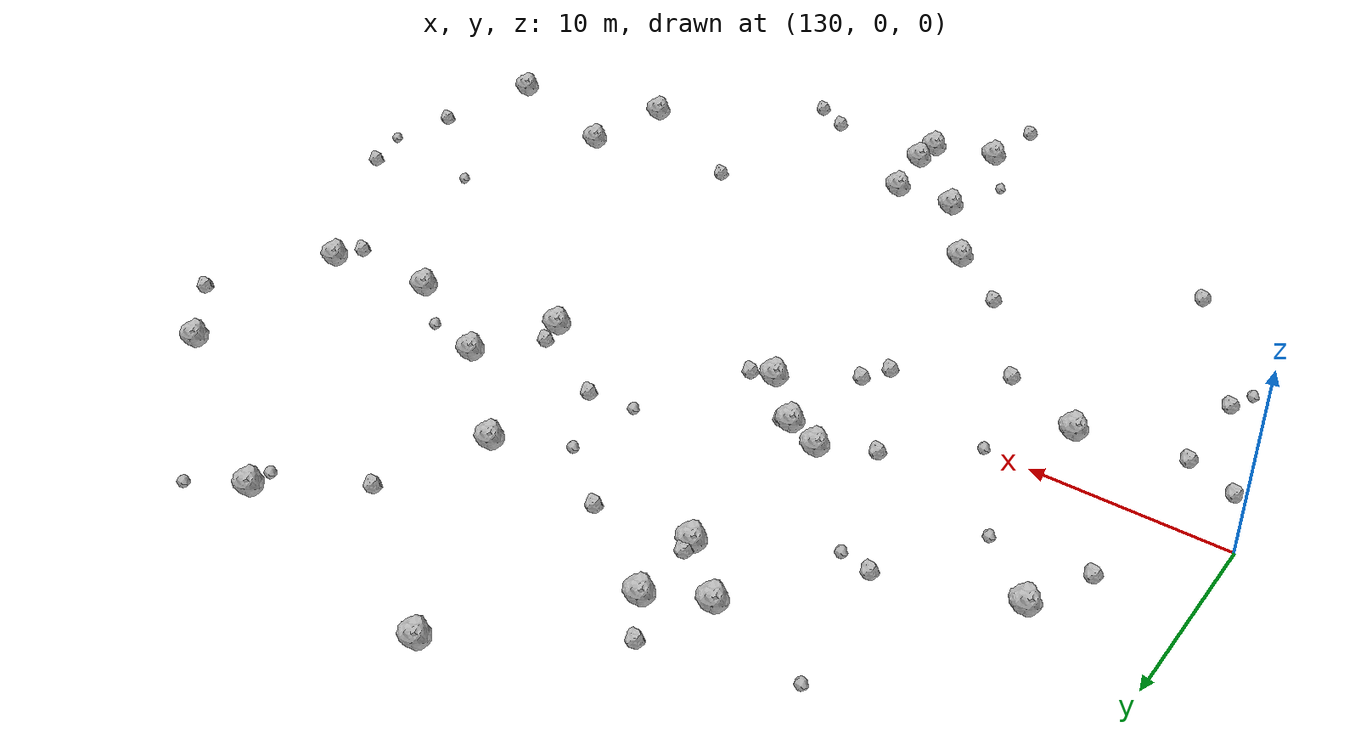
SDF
<sdf version="1.6">
 <world name="default">
  <include><uri>model://sun</uri></include>
  <model name="rock1_4_2">
   <include><uri>model://rock1</uri><pose>158.6550012631584 -22.2031380628884 0.5 0 0 0</pose></include>
  </model>
  <model name="rock1_4_3">
   <include><uri>model://rock1</uri><pose>173.3884005571448 5.204731684961274 0.5 0 0 0</pose></include>
  </model>
  <model name="rock1_4_4">
   <include><uri>model://rock1</uri><pose>150.9680054812359 3.686070891277218 0.5 0 0 0</pose></include>
  </model>
  <model name="rock1_4_5">
   <include><uri>model://rock1</uri><pose>136.01094713105903 8.377948889508957 0.5 0 0 0</pose></include>
  </model>
  <model name="rock1_4_6">
   <include><uri>model://rock1</uri><pose>155.12261176317534 -25.036456938575398 0.5 0 0 0</pose></include>
  </model>
  <model name="rock1_4_7">
   <include><uri>model://rock1</uri><pose>168.64064733642255 22.067451605080265 0.5 0 0 0</pose></include>
  </model>
  <model name="rock1_4_8">
   <include><uri>model://rock1</uri><pose>161.87478738523365 13.073514545352381 0.5 0 0 0</pose></include>
  </model>
  <model name="rock1_4_9">
   <include><uri>model://rock1</uri><pose>146.89282343516626 15.921397377291704 0.5 0 0 0</pose></include>
  </model>
  <model name="rock1_4_10">
   <include><uri>model://rock1</uri><pose>149.84639573108683 13.353756489468232 0.5 0 0 0</pose></include>
  </model>
  <model name="rock1_4_11">
   <include><uri>model://rock1</uri><pose>151.36430572928924 -13.974076011532215 0.5 0 0 0</pose></include>
  </model>
  <model name="rock1_4_12">
   <include><uri>model://rock1</uri><pose>157.96194273167603 -18.517885646405766 0.5 0 0 0</pose></include>
  </model>
  <model name="rock1_4_13">
   <include><uri>model://rock1</uri><pose>167.40805707027272 8.206272618997694 0.5 0 0 0</pose></include>
  </model>
  <model name="rock1_4_14">
   <include><uri>model://rock1</uri><pose>175.9444007005435 -12.776272116919081 0.5 0 0 0</pose></include>
  </model>
  <model name="rock1_4_15">
   <include><uri>model://rock1</uri><pose>154.44785664794952 -18.49552232557981 0.5 0 0 0</pose></include>
  </model>
  <model name="rock1_4_16">
   <include><uri>model://rock1</uri><pose>153.6245475364784 1.0583879797606883 0.5 0 0 0</pose></include>
  </model>
  <model name="rock1_4_17">
   <include><uri>model://rock1</uri><pose>165.29491256864608 3.8737519667300333 0.5 0 0 0</pose></include>
  </model>
  <model name="rock1_4_18">
   <include><uri>model://rock1</uri><pose>179.39332287069084 5.88210864074253 0.5 0 0 0</pose></include>
  </model>
  <model name="rock1_4_19">
   <include><uri>model://rock1</uri><pose>149.00294308046665 4.554871492030081 0.5 0 0 0</pose></include>
  </model>
  <model name="rock1_4_20">
   <include><uri>model://rock1</uri><pose>155.70747124528143 24.811401314754775 0.5 0 0 0</pose></include>
  </model>
  <model name="rock1_4_21">
   <include><uri>model://rock1</uri><pose>183.7455686944809 -15.622626113186541 0.5 0 0 0</pose></include>
  </model>
  <model name="rock1_4_22">
   <include><uri>model://rock1</uri><pose>149.68270767620845 17.375319937507058 0.5 0 0 0</pose></include>
  </model>
  <model name="rock1_4_23">
   <include><uri>model://rock1</uri><pose>179.7398213982105 15.538054796876317 0.5 0 0 0</pose></include>
  </model>
  <model name="rock1_4_24">
   <include><uri>model://rock1</uri><pose>158.59573517016605 -23.958571477610487 0.5 0 0 0</pose></include>
  </model>
  <model name="rock1_4_25">
   <include><uri>model://rock1</uri><pose>174.93570689900434 -17.910401313295427 0.5 0 0 0</pose></include>
  </model>
  <model name="rock1_4_26">
   <include><uri>model://rock1</uri><pose>139.56417773912491 -3.6200156017915397 0.5 0 0 0</pose></include>
  </model>
  <model name="rock2_4_0">
   <include><uri>model://rock2</uri><pose>164.66923261570895 -23.06890113905434 0.3 0 0 0</pose></include>
  </model>
  <model name="rock2_4_1">
   <include><uri>model://rock2</uri><pose>151.37704728467804 3.776587715280968 0.3 0 0 0</pose></include>
  </model>
  <model name="rock2_4_2">
   <include><uri>model://rock2</uri><pose>164.85723548409885 5.270170432731057 0.3 0 0 0</pose></include>
  </model>
  <model name="rock2_4_3">
   <include><uri>model://rock2</uri><pose>149.98478172543054 -1.3564913827487537 0.3 0 0 0</pose></include>
  </model>
  <model name="rock2_4_4">
   <include><uri>model://rock2</uri><pose>143.9143993008623 -5.715794958489141 0.3 0 0 0</pose></include>
  </model>
  <model name="rock2_4_5">
   <include><uri>model://rock2</uri><pose>131.4544935587424 -3.549836740279993 0.3 0 0 0</pose></include>
  </model>
  <model name="rock2_4_6">
   <include><uri>model://rock2</uri><pose>163.95111803575432 18.784169793181967 0.3 0 0 0</pose></include>
  </model>
  <model name="rock2_4_7">
   <include><uri>model://rock2</uri><pose>185.06066080901292 -9.580091142397855 0.3 0 0 0</pose></include>
  </model>
  <model name="rock2_4_8">
   <include><uri>model://rock2</uri><pose>154.78223507634556 1.4191512680226168 0.3 0 0 0</pose></include>
  </model>
  <model name="rock2_4_9">
   <include><uri>model://rock2</uri><pose>160.2730878568544 7.479662082123248 0.3 0 0 0</pose></include>
  </model>
  <model name="rock2_4_10">
   <include><uri>model://rock2</uri><pose>134.41462060548142 5.080957476373648 0.3 0 0 0</pose></include>
  </model>
  <model name="rock2_4_11">
   <include><uri>model://rock2</uri><pose>178.5974757969309 4.4832939791375 0.3 0 0 0</pose></include>
  </model>
  <model name="rock2_4_12">
   <include><uri>model://rock2</uri><pose>166.62470221775712 -24.16418374147863 0.3 0 0 0</pose></include>
  </model>
  <model name="rock2_4_13">
   <include><uri>model://rock2</uri><pose>138.86527458199612 -17.78320124216649 0.3 0 0 0</pose></include>
  </model>
  <model name="rock2_4_14">
   <include><uri>model://rock2</uri><pose>134.1444743429582 -4.677356692839002 0.3 0 0 0</pose></include>
  </model>
  <model name="rock2_4_15">
   <include><uri>model://rock2</uri><pose>149.15085211053557 -2.7541636487303904 0.3 0 0 0</pose></include>
  </model>
  <model name="rock2_4_16">
   <include><uri>model://rock2</uri><pose>147.8387414971969 -11.240613477512372 0.3 0 0 0</pose></include>
  </model>
  <model name="rock2_4_17">
   <include><uri>model://rock2</uri><pose>185.04384160019453 -3.252712887755294 0.3 0 0 0</pose></include>
  </model>
  <model name="rock2_4_18">
   <include><uri>model://rock2</uri><pose>149.74342431170356 14.046693272420079 0.3 0 0 0</pose></include>
  </model>
  <model name="rock2_4_19">
   <include><uri>model://rock2</uri><pose>154.55380363839546 -28.760490978310592 0.3 0 0 0</pose></include>
  </model>
  <model name="rock2_4_20">
   <include><uri>model://rock2</uri><pose>167.25814806901607 -13.844917534552362 0.3 0 0 0</pose></include>
  </model>
  <model name="rock2_4_21">
   <include><uri>model://rock2</uri><pose>182.9029033016297 12.00649366052005 0.3 0 0 0</pose></include>
  </model>
  <model name="rock2_4_22">
   <include><uri>model://rock2</uri><pose>134.12958248347397 -9.746159274968832 0.3 0 0 0</pose></include>
  </model>
  <model name="rock2_4_23">
   <include><uri>model://rock2</uri><pose>142.38888297608503 10.488113500420745 0.3 0 0 0</pose></include>
  </model>
  <model name="rock2_4_24">
   <include><uri>model://rock2</uri><pose>146.31661576681643 3.2351544432951584 0.3 0 0 0</pose></include>
  </model>
  <model name="rock2_4_25">
   <include><uri>model://rock2</uri><pose>148.16231129136133 19.649639453260704 0.3 0 0 0</pose></include>
  </model>
  <model name="rock2_4_26">
   <include><uri>model://rock2</uri><pose>154.83053888108142 13.954280764055163 0.3 0 0 0</pose></include>
  </model>
  <model name="rock3_4_0">
   <include><uri>model://rock3</uri><pose>152.96932481092585 -21.957636756479804 0.2 0 0 0</pose></include>
  </model>
  <model name="rock3_4_1">
   <include><uri>model://rock3</uri><pose>185.93752551084754 -6.049501346216854 0.2 0 0 0</pose></include>
  </model>
  <model name="rock3_4_2">
   <include><uri>model://rock3</uri><pose>168.4982458563105 20.77645434971476 0.2 0 0 0</pose></include>
  </model>
  <model name="rock3_4_3">
   <include><uri>model://rock3</uri><pose>157.72134492648507 7.147191332773758 0.2 0 0 0</pose></include>
  </model>
  <model name="rock3_4_4">
   <include><uri>model://rock3</uri><pose>139.24334600610445 5.367977541321345 0.2 0 0 0</pose></include>
  </model>
  <model name="rock3_4_5">
   <include><uri>model://rock3</uri><pose>141.22067060968146 17.653489695557944 0.2 0 0 0</pose></include>
  </model>
  <model name="rock3_4_6">
   <include><uri>model://rock3</uri><pose>179.2821249479383 -4.725492044127236 0.2 0 0 0</pose></include>
  </model>
  <model name="rock3_4_7">
   <include><uri>model://rock3</uri><pose>170.49480841804626 7.395626658985918 0.2 0 0 0</pose></include>
  </model>
  <model name="rock3_4_8">
   <include><uri>model://rock3</uri><pose>144.0474760782911 10.045453317263487 0.2 0 0 0</pose></include>
  </model>
  <model name="rock3_4_9">
   <include><uri>model://rock3</uri><pose>158.23714845016715 11.181551905965492 0.2 0 0 0</pose></include>
  </model>
  <model name="rock3_4_10">
   <include><uri>model://rock3</uri><pose>133.5047449924541 -11.266188372252962 0.2 0 0 0</pose></include>
  </model>
  <model name="rock3_4_11">
   <include><uri>model://rock3</uri><pose>142.36665381769114 0.0022575716832271553 0.2 0 0 0</pose></include>
  </model>
  <model name="rock3_4_12">
   <include><uri>model://rock3</uri><pose>171.30051905138671 23.546849083909677 0.2 0 0 0</pose></include>
  </model>
 </world>
</sdf>
